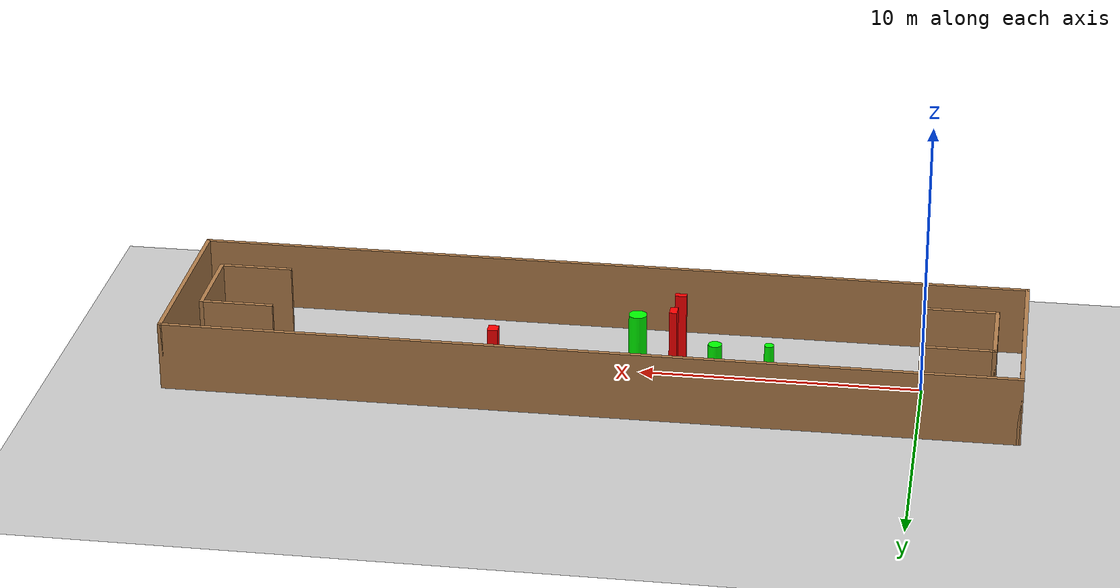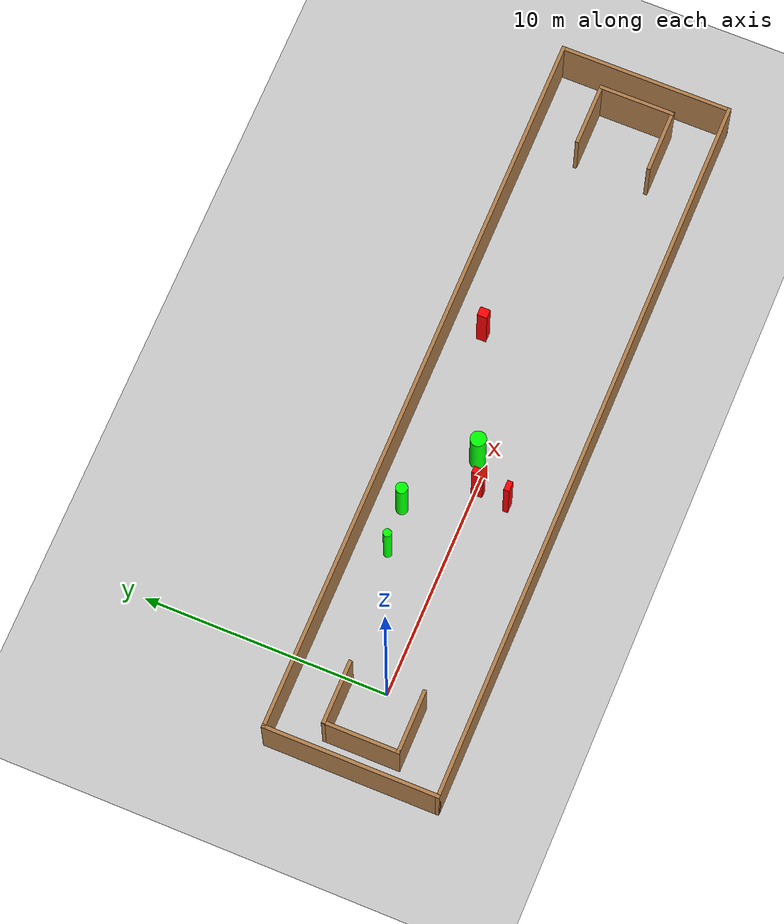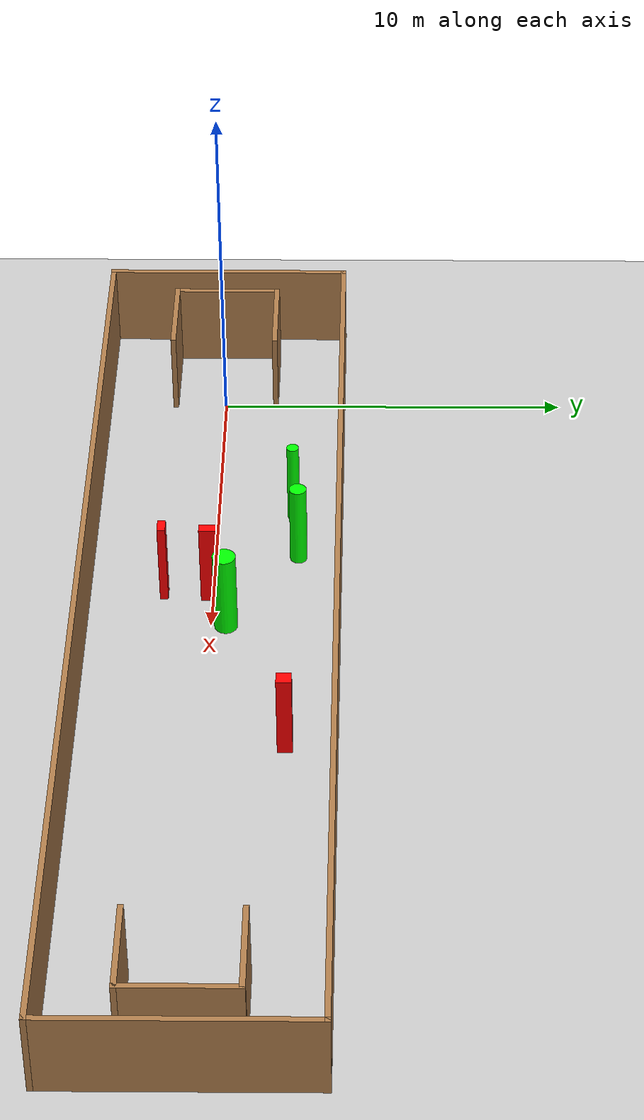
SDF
<sdf version="1.7">
 <world name="default">
  <light name="sun" type="directional">
   <pose>0 0 10 0 -0 0</pose>
   <diffuse>0.8 0.8 0.8 1</diffuse>
   <specular>0.2 0.2 0.2 1</specular>
   <attenuation>
    <range>1000</range>
    <constant>0.9</constant>
    <linear>0.01</linear>
    <quadratic>0.001</quadratic>
   </attenuation>
   <direction>-0.5 0.1 -0.9</direction>
   <spot><inner_angle>0</inner_angle><outer_angle>0</outer_angle><falloff>0</falloff></spot>
  </light>
  <model name="ground_plane">
   <static>1</static>
   <link name="link">
    <collision name="collision">
     <geometry><plane><normal>0 0 1</normal><size>100 100</size></plane></geometry>
     <surface>
      <contact><collide_bitmask>65535</collide_bitmask></contact>
      <friction><ode><mu>100</mu><mu2>50</mu2></ode></friction>
     </surface>
    </collision>
    <visual name="visual">
     <cast_shadows>0</cast_shadows>
     <geometry><plane><normal>0 0 1</normal><size>100 100</size></plane></geometry>
     <material>
      <script><uri>file://media/materials/scripts/gazebo.material</uri><name>Gazebo/Grey</name></script>
     </material>
    </visual>
   </link>
  </model>
  <gravity>0 0 -9.8</gravity>
  <magnetic_field>6e-06 2.3e-05 -4.2e-05</magnetic_field>
  <atmosphere type="adiabatic"/>
  <physics type="ode">
   <max_step_size>0.001</max_step_size>
   <real_time_factor>1</real_time_factor>
   <real_time_update_rate>1000</real_time_update_rate>
  </physics>
  <scene><ambient>0.4 0.4 0.4 1</ambient><background>0.7 0.7 0.7 1</background><shadows>1</shadows></scene>
  <spherical_coordinates>
   <surface_model>EARTH_WGS84</surface_model>
   <latitude_deg>0</latitude_deg>
   <longitude_deg>0</longitude_deg>
   <elevation>0</elevation>
   <heading_deg>0</heading_deg>
  </spherical_coordinates>
  <model name="my_base_walls">
   <link name="Wall_0">
    <collision name="Wall_0_Collision">
     <geometry><box><size>7.15 0.15 2.5</size></box></geometry>
     <pose>0 0 1.25 0 -0 0</pose>
    </collision>
    <visual name="Wall_0_Visual">
     <pose>0 0 1.25 0 -0 0</pose>
     <geometry><box><size>7.15 0.15 2.5</size></box></geometry>
     <material>
      <script><uri>file://media/materials/scripts/gazebo.material</uri><name>Gazebo/Wood</name></script>
      <ambient>1 1 1 1</ambient>
     </material>
     <meta><layer>0</layer></meta>
    </visual>
    <pose>-15 0 0 0 -0 1.5708</pose>
   </link>
   <link name="Wall_10">
    <collision name="Wall_10_Collision">
     <geometry><box><size>2.65 0.15 2.5</size></box></geometry>
     <pose>0 0 1.25 0 -0 0</pose>
    </collision>
    <visual name="Wall_10_Visual">
     <pose>0 0 1.25 0 -0 0</pose>
     <geometry><box><size>2.65 0.15 2.5</size></box></geometry>
     <material>
      <script><uri>file://media/materials/scripts/gazebo.material</uri><name>Gazebo/Wood</name></script>
      <ambient>1 1 1 1</ambient>
     </material>
     <meta><layer>0</layer></meta>
    </visual>
    <pose>-12.75 -1.5 0 0 -0 0</pose>
   </link>
   <link name="Wall_12">
    <collision name="Wall_12_Collision">
     <geometry><box><size>2.65 0.15 2.5</size></box></geometry>
     <pose>0 0 1.25 0 -0 0</pose>
    </collision>
    <visual name="Wall_12_Visual">
     <pose>0 0 1.25 0 -0 0</pose>
     <geometry><box><size>2.65 0.15 2.5</size></box></geometry>
     <material>
      <script><uri>file://media/materials/scripts/gazebo.material</uri><name>Gazebo/Wood</name></script>
      <ambient>1 1 1 1</ambient>
     </material>
     <meta><layer>0</layer></meta>
    </visual>
    <pose>-12.75 1.5 0 0 -0 0</pose>
   </link>
   <link name="Wall_14">
    <collision name="Wall_14_Collision">
     <geometry><box><size>3.15 0.15 2.5</size></box></geometry>
     <pose>0 0 1.25 0 -0 0</pose>
    </collision>
    <visual name="Wall_14_Visual">
     <pose>0 0 1.25 0 -0 0</pose>
     <geometry><box><size>3.15 0.15 2.5</size></box></geometry>
     <material>
      <script><uri>file://media/materials/scripts/gazebo.material</uri><name>Gazebo/Wood</name></script>
      <ambient>1 1 1 1</ambient>
     </material>
     <meta><layer>0</layer></meta>
    </visual>
    <pose>14 0 0 0 -0 -1.5708</pose>
   </link>
   <link name="Wall_15">
    <collision name="Wall_15_Collision">
     <geometry><box><size>2.65 0.15 2.5</size></box></geometry>
     <pose>0 0 1.25 0 -0 0</pose>
    </collision>
    <visual name="Wall_15_Visual">
     <pose>0 0 1.25 0 -0 0</pose>
     <geometry><box><size>2.65 0.15 2.5</size></box></geometry>
     <material>
      <script><uri>file://media/materials/scripts/gazebo.material</uri><name>Gazebo/Wood</name></script>
      <ambient>1 1 1 1</ambient>
     </material>
     <meta><layer>0</layer></meta>
    </visual>
    <pose>12.75 -1.5 0 0 -0 3.14159</pose>
   </link>
   <link name="Wall_17">
    <collision name="Wall_17_Collision">
     <geometry><box><size>2.65 0.15 2.5</size></box></geometry>
     <pose>0 0 1.25 0 -0 0</pose>
    </collision>
    <visual name="Wall_17_Visual">
     <pose>0 0 1.25 0 -0 0</pose>
     <geometry><box><size>2.65 0.15 2.5</size></box></geometry>
     <material>
      <script><uri>file://media/materials/scripts/gazebo.material</uri><name>Gazebo/Wood</name></script>
      <ambient>1 1 1 1</ambient>
     </material>
     <meta><layer>0</layer></meta>
    </visual>
    <pose>12.75 1.5 0 0 -0 3.14159</pose>
   </link>
   <link name="Wall_2">
    <collision name="Wall_2_Collision">
     <geometry><box><size>30.15 0.15 2.5</size></box></geometry>
     <pose>0 0 1.25 0 -0 0</pose>
    </collision>
    <visual name="Wall_2_Visual">
     <pose>0 0 1.25 0 -0 0</pose>
     <geometry><box><size>30.15 0.15 2.5</size></box></geometry>
     <material>
      <script><uri>file://media/materials/scripts/gazebo.material</uri><name>Gazebo/Wood</name></script>
      <ambient>1 1 1 1</ambient>
     </material>
     <meta><layer>0</layer></meta>
    </visual>
    <pose>-0 -3.5 0 0 -0 0</pose>
   </link>
   <link name="Wall_4">
    <collision name="Wall_4_Collision">
     <geometry><box><size>30.15 0.15 2.5</size></box></geometry>
     <pose>0 0 1.25 0 -0 0</pose>
    </collision>
    <visual name="Wall_4_Visual">
     <pose>0 0 1.25 0 -0 0</pose>
     <geometry><box><size>30.15 0.15 2.5</size></box></geometry>
     <material>
      <script><uri>file://media/materials/scripts/gazebo.material</uri><name>Gazebo/Wood</name></script>
      <ambient>1 1 1 1</ambient>
     </material>
     <meta><layer>0</layer></meta>
    </visual>
    <pose>-0 3.5 0 0 -0 0</pose>
   </link>
   <link name="Wall_6">
    <collision name="Wall_6_Collision">
     <geometry><box><size>7.15 0.15 2.5</size></box></geometry>
     <pose>0 0 1.25 0 -0 0</pose>
    </collision>
    <visual name="Wall_6_Visual">
     <pose>0 0 1.25 0 -0 0</pose>
     <geometry><box><size>7.15 0.15 2.5</size></box></geometry>
     <material>
      <script><uri>file://media/materials/scripts/gazebo.material</uri><name>Gazebo/Wood</name></script>
      <ambient>1 1 1 1</ambient>
     </material>
     <meta><layer>0</layer></meta>
    </visual>
    <pose>15 0 0 0 -0 -1.5708</pose>
   </link>
   <link name="Wall_9">
    <collision name="Wall_9_Collision">
     <geometry><box><size>3.15 0.15 2.5</size></box></geometry>
     <pose>0 0 1.25 0 -0 0</pose>
    </collision>
    <visual name="Wall_9_Visual">
     <pose>0 0 1.25 0 -0 0</pose>
     <geometry><box><size>3.15 0.15 2.5</size></box></geometry>
     <material>
      <script><uri>file://media/materials/scripts/gazebo.material</uri><name>Gazebo/Wood</name></script>
      <ambient>1 1 1 1</ambient>
     </material>
     <meta><layer>0</layer></meta>
    </visual>
    <pose>-14 0 0 0 -0 -1.5708</pose>
   </link>
   <static>1</static>
   <pose>11.5 0 0 0 -0 0</pose>
  </model>
  <model name="cylinder1">
   <static>1</static>
   <link name="link">
    <inertial>
     <mass>1</mass>
     <inertia><ixx>0.5</ixx><ixy>0</ixy><ixz>0</ixz><iyy>0.5</iyy><iyz>0</iyz><izz>1</izz></inertia>
    </inertial>
    <collision name="collision">
     <geometry><cylinder><radius>0.3220102139323866</radius><length>2.5</length></cylinder></geometry>
    </collision>
    <visual name="visual">
     <geometry><cylinder><radius>0.3220102139323866</radius><length>2.5</length></cylinder></geometry>
     <material>
      <ambient>0 1 0 1</ambient>
      <diffuse>0 1 0 1</diffuse>
      <specular>0.1 0.1 0.1 1</specular>
      <emissive>0 0 0 0</emissive>
     </material>
    </visual>
   </link>
   <pose>10.026346204908704 0.41342091905917133 1.25 0 0 0</pose>
  </model>
  <model name="cylinder2">
   <static>1</static>
   <link name="link">
    <inertial>
     <mass>1</mass>
     <inertia><ixx>0.5</ixx><ixy>0</ixy><ixz>0</ixz><iyy>0.5</iyy><iyz>0</iyz><izz>1</izz></inertia>
    </inertial>
    <collision name="collision">
     <geometry><cylinder><radius>0.17099603558651943</radius><length>2.5</length></cylinder></geometry>
    </collision>
    <visual name="visual">
     <geometry><cylinder><radius>0.17099603558651943</radius><length>2.5</length></cylinder></geometry>
     <material>
      <ambient>0 1 0 1</ambient>
      <diffuse>0 1 0 1</diffuse>
      <specular>0.1 0.1 0.1 1</specular>
      <emissive>0 0 0 0</emissive>
     </material>
    </visual>
   </link>
   <pose>5.2225439248628724 2.1655887510791096 1.25 0 0 0</pose>
  </model>
  <model name="cylinder3">
   <static>1</static>
   <link name="link">
    <inertial>
     <mass>1</mass>
     <inertia><ixx>0.5</ixx><ixy>0</ixy><ixz>0</ixz><iyy>0.5</iyy><iyz>0</iyz><izz>1</izz></inertia>
    </inertial>
    <collision name="collision">
     <geometry><cylinder><radius>0.24072570265609897</radius><length>2.5</length></cylinder></geometry>
    </collision>
    <visual name="visual">
     <geometry><cylinder><radius>0.24072570265609897</radius><length>2.5</length></cylinder></geometry>
     <material>
      <ambient>0 1 0 1</ambient>
      <diffuse>0 1 0 1</diffuse>
      <specular>0.1 0.1 0.1 1</specular>
      <emissive>0 0 0 0</emissive>
     </material>
    </visual>
   </link>
   <pose>7.08957060673794 2.3508320068206334 1.25 0 0 0</pose>
  </model>
  <model name="box1">
   <static>1</static>
   <link name="link">
    <inertial>
     <mass>1</mass>
     <inertia><ixx>0.083</ixx><ixy>0</ixy><ixz>0</ixz><iyy>0.083</iyy><iyz>0</iyz><izz>0.083</izz></inertia>
    </inertial>
    <collision name="collision">
     <geometry><box><size>0.3715993668483265 0.4111139073232512 2.5</size></box></geometry>
    </collision>
    <visual name="visual">
     <geometry><box><size>0.3715993668483265 0.4111139073232512 2.5</size></box></geometry>
     <material>
      <ambient>1 0 0 1</ambient>
      <diffuse>1 0 0 1</diffuse>
      <specular>0.1 0.1 0.1 1</specular>
      <emissive>0 0 0 0</emissive>
     </material>
    </visual>
    <sensor name="my_contact" type="contact">
     <contact><collision>box_collision</collision><topic>__default_topic__</topic></contact>
    </sensor>
   </link>
   <pose>14.891466806993348 2.170665344202588 1.25 0 0 0</pose>
  </model>
  <model name="box2">
   <static>1</static>
   <link name="link">
    <inertial>
     <mass>1</mass>
     <inertia><ixx>0.083</ixx><ixy>0</ixy><ixz>0</ixz><iyy>0.083</iyy><iyz>0</iyz><izz>0.083</izz></inertia>
    </inertial>
    <collision name="collision">
     <geometry><box><size>0.41586458993099906 0.22554882011151275 2.5</size></box></geometry>
    </collision>
    <visual name="visual">
     <geometry><box><size>0.41586458993099906 0.22554882011151275 2.5</size></box></geometry>
     <material>
      <ambient>1 0 0 1</ambient>
      <diffuse>1 0 0 1</diffuse>
      <specular>0.1 0.1 0.1 1</specular>
      <emissive>0 0 0 0</emissive>
     </material>
    </visual>
    <sensor name="my_contact" type="contact">
     <contact><collision>box_collision</collision><topic>__default_topic__</topic></contact>
    </sensor>
   </link>
   <pose>8.707696557044061 -1.3555580424872309 1.25 0 0 0</pose>
  </model>
  <model name="box3">
   <static>1</static>
   <link name="link">
    <inertial>
     <mass>1</mass>
     <inertia><ixx>0.083</ixx><ixy>0</ixy><ixz>0</ixz><iyy>0.083</iyy><iyz>0</iyz><izz>0.083</izz></inertia>
    </inertial>
    <collision name="collision">
     <geometry><box><size>0.27188136626770937 0.467618146419064 2.5</size></box></geometry>
    </collision>
    <visual name="visual">
     <geometry><box><size>0.27188136626770937 0.467618146419064 2.5</size></box></geometry>
     <material>
      <ambient>1 0 0 1</ambient>
      <diffuse>1 0 0 1</diffuse>
      <specular>0.1 0.1 0.1 1</specular>
      <emissive>0 0 0 0</emissive>
     </material>
    </visual>
    <sensor name="my_contact" type="contact">
     <contact><collision>box_collision</collision><topic>__default_topic__</topic></contact>
    </sensor>
   </link>
   <pose>8.817824202169618 -0.09150711451001836 1.25 0 0 0</pose>
  </model>
 </world>
</sdf>
